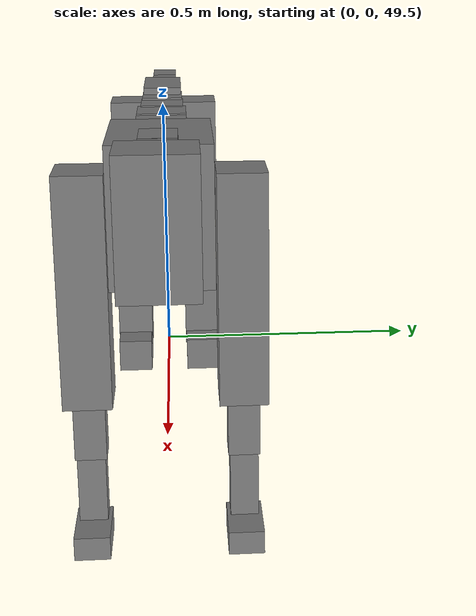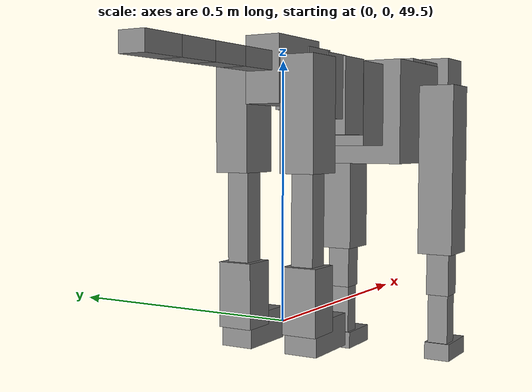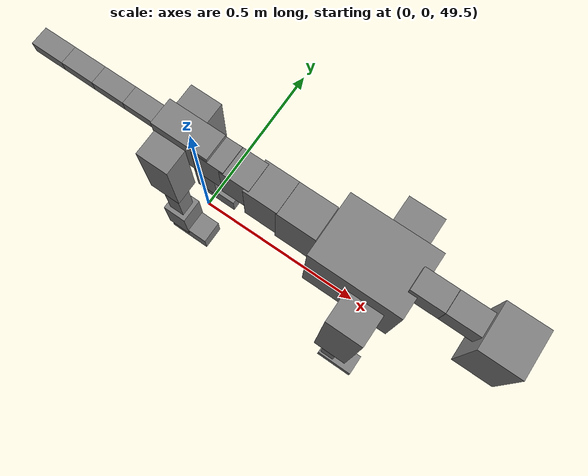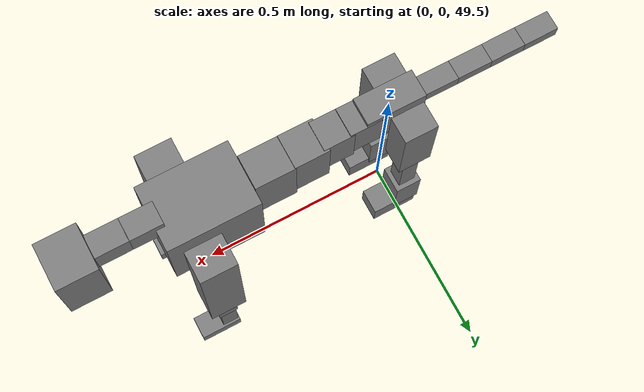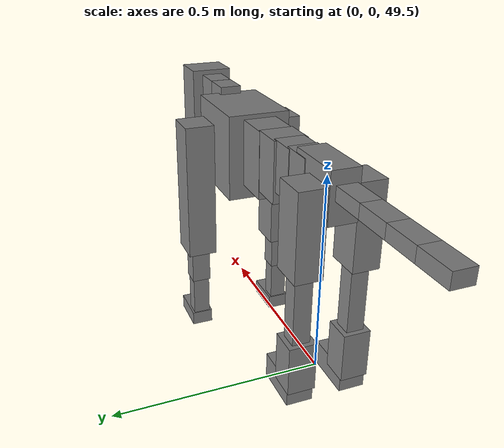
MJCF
<mujoco model="dog">

    <default>
        <joint armature="0.02" stiffness="1" damping="0.2" limited="true"/>
        <geom condim="3" friction="1 0.05 0.05" margin="0.01"/>
        <motor ctrllimited="true" ctrlrange="-1.0 1.0" forcelimited="true" gear="50"/>
    </default>

    <compiler inertiafromgeom="true" angle="radian"/>

    <option timestep="0.016" iterations="50" tolerance="1e-10" solver="Newton" jacobian="dense" cone="pyramidal"/>

    <size nconmax="20000" njmax="60000" nstack="5000000"/>
    <visual>
        <map force="0.1" zfar="30"/>
        <rgba haze="0.15 0.25 0.35 1"/>
        <quality shadowsize="2048"/>
        <global offwidth="800" offheight="800"/>
    </visual>

    <asset>
        <texture type="skybox" builtin="gradient" rgb1="0.3 0.5 0.7" rgb2="0 0 0" width="512" height="512"/>
        <texture name="texplane" type="2d" builtin="checker" rgb1=".2 .3 .4" rgb2=".1 0.15 0.2" width="512" height="512"
                 mark="cross" markrgb=".8 .8 .8"/>
        <texture name="texgeom" type="cube" builtin="flat" mark="cross" width="127" height="1278" rgb1="0.8 0.6 0.4"
                 rgb2="0.8 0.6 0.4" markrgb="1 1 1" random="0.01"/>

        <material name="matplane" reflectance="0.3" texture="texplane" texrepeat="1 1" texuniform="true"/>
        <material name="matgeom" texture="texgeom" texuniform="true" rgba="0.8 0.6 .4 1"/>
    </asset>

    <worldbody>
        <geom name="floor" pos="0 0 0" size="0 0 .25" type="plane" material="matplane" condim="3"/>

        <light directional="false" diffuse=".2 .2 .2" specular="0 0 0" pos="0 0 5" dir="0 0 -1" castshadow="false"/>
        <light mode="targetbodycom" target="torso" directional="false" diffuse=".8 .8 .8" specular="0.3 0.3 0.3"
               pos="0 0 4.0" dir="0 0 -1"/>

        <body name="root" pos="0 0 50">
            <freejoint name="root_1"/>
            <geom type="box" pos="0 0 -0.02" size="0.0774  0.0358  0.063" density="2030"/>

            <body name="spine1" pos="0.054 0 0">
                <joint name="spine1_y" axis="0 1 0" range="0 0.7" limited="true"/>
                <geom type="box" pos="0.02375 0 -0.03" size="0.04375  0.0375  0.05985" density="2030"/>

                <body name="spine2" pos="0.0612 0 0">
                    <joint name="spine2_y" axis="0 1 0" range="-0.15 0.15" limited="true"/>
                    <geom type="box" pos="0.03555  0  -0.04" size="0.04055  0.039  0.06615" density="2030"/>

                    <body name="spine3" pos="0.0730 0 0">
                        <joint name="spine3_y" axis="0 1 0" range="-0.15 0.15" limited="true"/>
                        <geom type="box" pos="0.03555  0  -0.057" size="0.04555  0.0445  0.081" density="2030"/>

                        <body name="spine4" pos="0.0780 0 0">
                            <joint name="spine4_y" axis="0 1 0" range="-0.15 0.15" limited="true"/>
                            <geom type="box" pos="0.05265  0  -0.07" size="0.05265  0.045  0.09135" density="2030"/>

                            <body name="torso" pos="0.1082 0 0">
                                <joint name="torso_y" axis="0 1 0" range="-0.15 0.15" limited="true"/>
                                <geom type="box" pos="0.11925  0  -0.085" size="0.11925  0.085  0.11745"
                                      density="2030"/>

                                <body name="neck1" pos="0.2160  0   0.0180">
                                    <joint name="neck1_y" axis="0 1 0" range="-1.2  -1" limited="true"/>
                                    <geom type="box" pos="0.0423  0  0" size="0.0423  0.03  0.036" density="2325"/>

                                    <body name="neck2" pos="0.0853  0  0">
                                        <joint name="neck2_y" axis="0 1 0" range="0.1  0" limited="true"/>
                                        <geom type="box" pos="0.0423  0  0" size="0.0423  0.03  0.036" density="2325"/>

                                        <body name="head" pos="0.0853  0  0">
                                            <joint name="head_y" axis="0 1 0" range="-0.3  -0.2" limited="true"/>
                                            <geom type="box" pos="0.0531  0  -0.055" size="0.0531  0.06  0.1044"
                                                  density="4030"/>

                                        </body>
                                    </body>
                                </body>

                                <body name="front_shoulder" pos="0.156  0   -0.0480">
                                    <joint name="front_shoulder_y" axis="0 1 0" range="-1 1.5" limited="true"/>
                                    <geom type="box" pos="0 0.13 -0.1710" size="0.0483  0.0413  0.1977" density="1158"/>
                                    <geom type="box" pos="0 -0.13 -0.1710" size="0.0483  0.0413  0.1977"
                                          density="1158"/>

                                    <body name="front_elbow" pos="0  0  -0.3421">
                                        <joint name="front_elbow_y" axis="0 1 0" range="-2 0" limited="true"/>
                                        <geom type="box" pos="0 0.13 -0.0633" size="0.0264  0.0270  0.0633"
                                              density="1081"/>
                                        <geom type="box" pos="0 -0.13 -0.0633" size="0.0264  0.0270  0.0633"
                                              density="1081"/>

                                        <body name="front_wrist" pos="0  0  -0.1267">
                                            <joint name="front_wrist_y" axis="0 1 0" range="-0.2 0" limited="true"/>
                                            <geom type="box" pos="0 0.13 -0.0651" size="0.0218  0.0242  0.0782"
                                                  density="1664"/>
                                            <geom type="box" pos="0 -0.13 -0.0651" size="0.0218  0.0242  0.0782"
                                                  density="1664"/>

                                            <body name="front_finger_end" pos="0  0  -0.1302">
                                                <joint name="front_finger_y" axis="0 1 0" range="-0.4 1"
                                                       limited="true"/>
                                                <geom type="box" pos="0.0304  0.13  -0.0053"
                                                      size="0.0557  0.0304  0.0203" density="1515"/>
                                                <geom type="box" pos="0.0304  -0.13  -0.0053"
                                                      size="0.0557  0.0304  0.0203" density="1515"/>

                                            </body>

                                        </body>
                                    </body>
                                </body>

                            </body>
                        </body>
                    </body>
                </body>
            </body>

            <body name="back_hip" pos="-0.03 0 -0.018">
                <joint name="back_hip_y" axis="0 1 0" range="-1.5 0.3" limited="true"/>
                <geom type="box" pos="0 0.07 -0.0852" size="0.0438  0.0343  0.1080" density="1154"/>
                <geom type="box" pos="0 -0.07 -0.0852" size="0.0438  0.0343  0.1080" density="1154"/>

                <body name="back_knee" pos="0  0  -0.1704">
                    <joint name="back_knee_y" axis="0 1 0" range="0 2.8" limited="true"/>
                    <geom type="box" pos="0 0.07 -0.1034" size="0.0225  0.0221  0.1189" density="1227"/>
                    <geom type="box" pos="0 -0.07 -0.1034" size="0.0225  0.0221  0.1189" density="1227"/>

                    <body name="back_ankle" pos="0  0  -0.2067">
                        <joint name="back_ankle_y" axis="0 1 0" range="-2.2 0" limited="true"/>
                        <geom type="box" pos="0 0.07 -0.0522" size="0.0348  0.0348  0.0634" density="1284"/>
                        <geom type="box" pos="0 -0.07 -0.0522" size="0.0348  0.0348  0.0634" density="1284"/>

                        <body name="back_toe_end" pos="0  0  -0.1044">
                            <joint name="back_toe_y" axis="0 1 0" range="-0.4 1" limited="true"/>
                            <geom type="box" pos="0.0330  0.07  -0.0168" size="0.0604  0.0330  0.0318" density="1515"/>
                            <geom type="box" pos="0.0330  -0.07  -0.0168" size="0.0604  0.0330  0.0318" density="1515"/>

                        </body>
                    </body>
                </body>
            </body>

            <body name="tail1" pos="-0.074 0 -0.006">
                <joint name="tail1_y" axis="0 1 0" range="-0.2 0.2" limited="true"/>
                <geom type="box" pos="-0.0536  0  0" size="0.045  0.025  0.0175" density="1587"/>

                <body name="tail2" pos="-0.09 0 0">
                    <joint name="tail2_y" axis="0 1 0" range="-0.2 0.2" limited="true"/>
                    <geom type="box" pos="-0.0536  0  0" size="0.045  0.025  0.0175" density="1587"/>

                    <body name="tail3" pos="-0.09 0 0">
                        <joint name="tail3_y" axis="0 1 0" range="-0.2 0.2" limited="true"/>
                        <geom type="box" pos="-0.0536  0  0" size="0.045  0.025  0.0175" density="1587"/>

                        <body name="tail4" pos="-0.09 0 0">
                            <joint name="tail4_y" axis="0 1 0" range="-0.2 0.2" limited="true"/>
                            <geom type="box" pos="-0.0536  0  0" size="0.045  0.025  0.0175" density="1587"/>

                        </body>
                    </body>
                </body>
            </body>
        </body>
    </worldbody>

    <actuator>
        <motor joint="spine1_y" forcerange="-150 150     "/>
        <motor joint="spine2_y" forcerange="-150 150     "/>
        <motor joint="spine3_y" forcerange="-150 150     "/>
        <motor joint="spine4_y" forcerange="-150 150     "/>
        <motor joint="torso_y" forcerange="-150 150     "/>
        <motor joint="neck1_y" forcerange="-100 100       "/>
        <motor joint="neck2_y" forcerange="-100 100       "/>
        <motor joint="head_y" forcerange="-150 150       "/>
        <motor joint="front_shoulder_y" forcerange="-198.83 176.55"/>
        <motor joint="front_elbow_y" forcerange="-190.11 106.13"/>
        <motor joint="front_wrist_y" forcerange="-121.65 72.28"/>
        <motor joint="front_finger_y" forcerange="-38.15 83.99"/>
        <motor joint="back_hip_y" forcerange="-378.78 279.17"/>
        <motor joint="back_knee_y" forcerange="-309.10 213.00"/>
        <motor joint="back_angle_y" forcerange="-216.12 240.94"/>
        <motor joint="back_toe_y" forcerange="-105.04 78.70"/>
        <motor joint="tail1_y" forcerange="-50 50     "/>
        <motor joint="tail2_y" forcerange="-50 50     "/>
        <motor joint="tail3_y" forcerange="-50 50     "/>
        <motor joint="tail4_y" forcerange="-50 50     "/>
    </actuator>
</mujoco>
